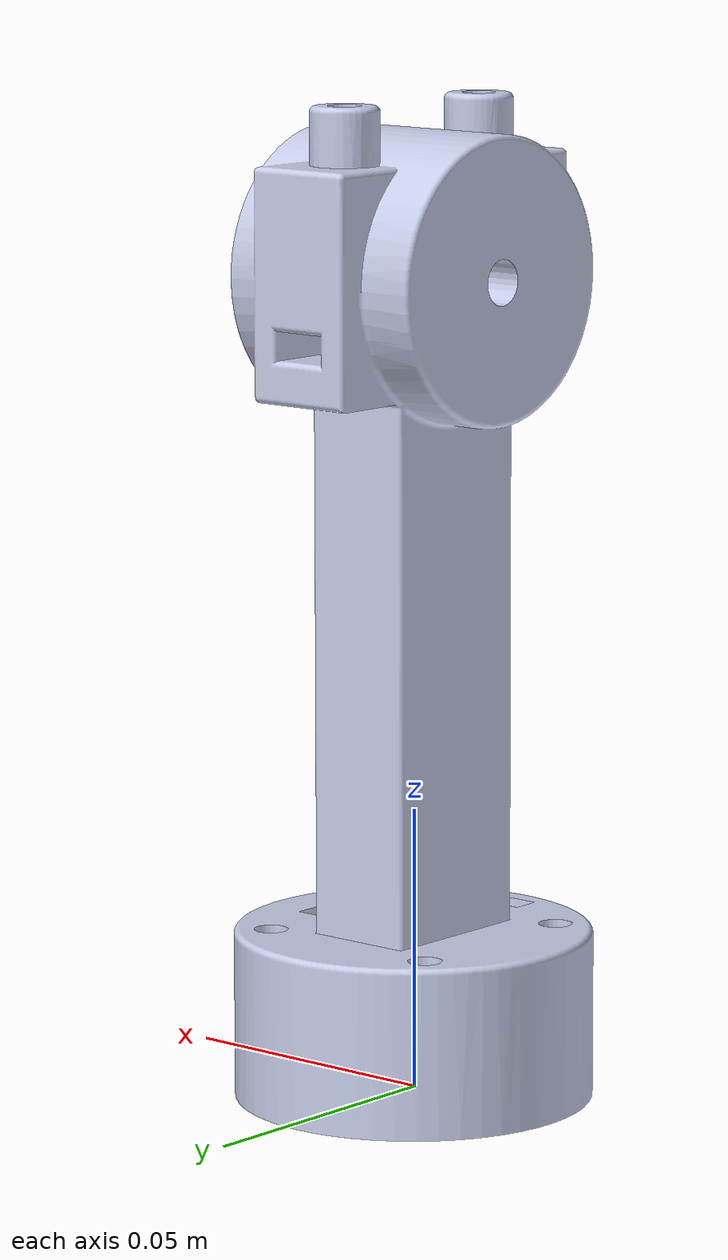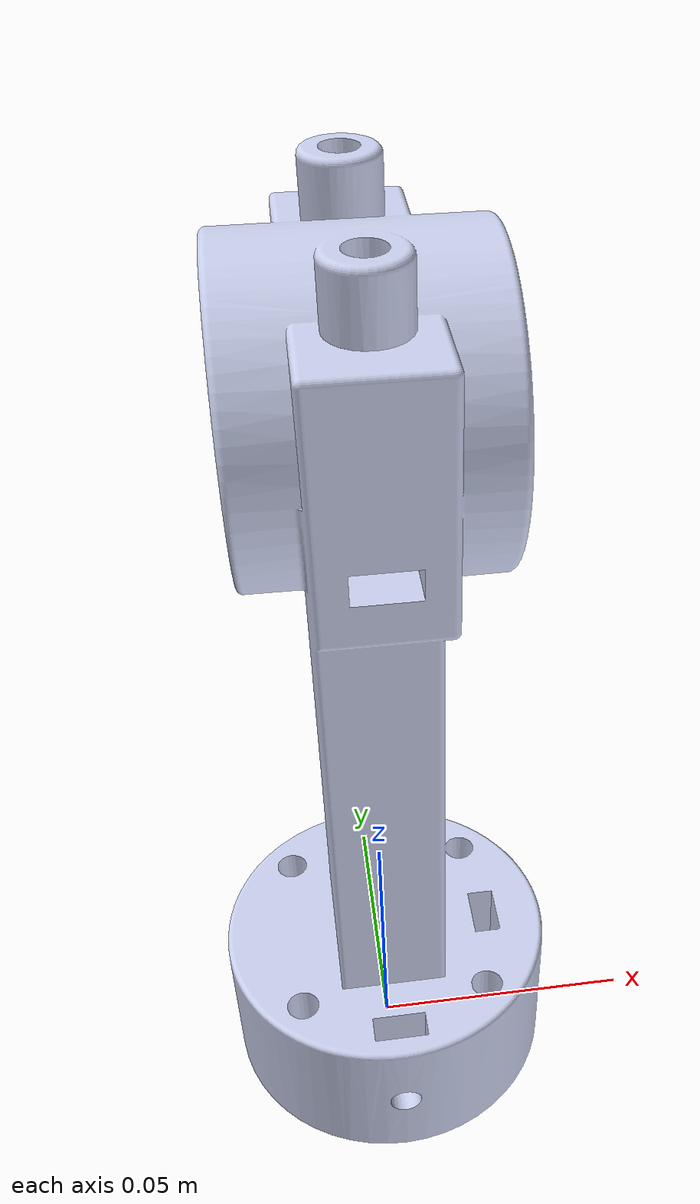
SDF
<?xml version="1.0" ?>
<sdf version="1.5">
  <model name="pen_support">
    <static>false</static>
    <link name="pen_support_link">
      <inertial>
        <pose>0.003 0.003 0.07 0 0 0</pose>
        <mass>0.5</mass>
      </inertial>
      <collision name="collision">
        <pose>0.0131 0.003 0.077 3.14 0 0</pose>
        <geometry>
          <mesh>
            <uri>model://pen_support/meshes/pen_support.dae</uri>
          </mesh>
        </geometry>
      </collision>
      <visual name="visual">
        <pose>0.0131 0.003 0.077 3.14 0 0</pose>
        <geometry>
          <mesh>
            <uri>model://pen_support/meshes/pen_support.dae</uri>
          </mesh>
        </geometry>
      </visual>
    </link>
  </model>
</sdf>
